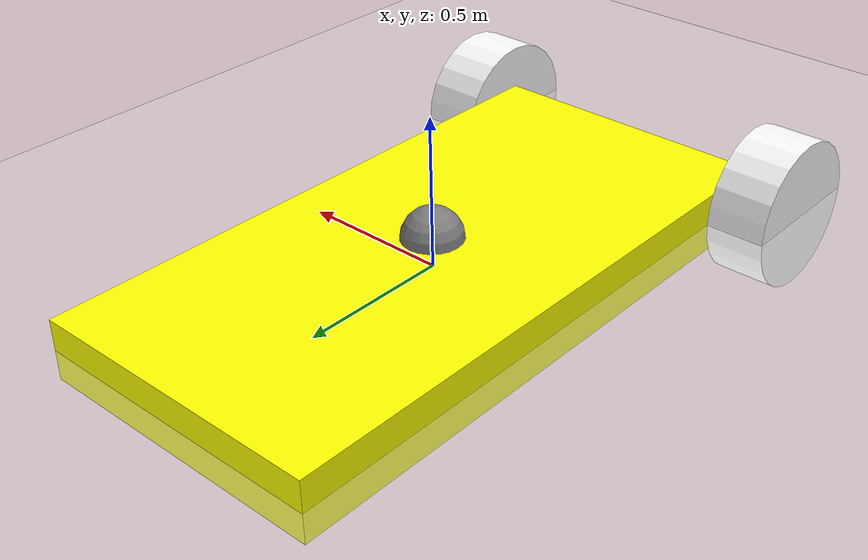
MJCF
<mujoco>
  <option gravity="0 0 -9.81"/>

  <worldbody>
    <camera name="my_cam" pos="0 0 10" euler="0 0 0"/>
    <light diffuse=".5 .5 .5" pos="0 0 10" dir="0 0 -1"/>
    <geom type="plane" size="8 8 0.1" rgba=".9 .9 .9 1"/>

    <body name="chassis" pos="0 0 0">
      <joint type="free" axis="-1 0 0" pos="0 0 -0.5"/>
      <geom type="box" size="0.5 1 0.1" rgba="1 1 0 1"/>
      <site name="marker" pos = "0 0 0.1" size="0.1"/>
      <body name="wheel1" pos="0.6 -1 0" euler="0 90 0">
        <joint name="wheel1" type="hinge" axis="0 0 1" pos="0 0 0"/>
        <geom type="cylinder" size="0.25 0.1" rgba= "1 1 1 1" />
      </body>

      <body name="wheel2" pos="-0.60 -1 0" euler="0 90 0">
        <joint name="wheel2" type="hinge" axis="0 0 1" pos="0 0 0"/>
        <geom type="cylinder" size="0.25 0.1" rgba= "1 1 1 1" />
      </body>
    </body>
  </worldbody>
  <sensor>
    <framepos objtype="site" objname="marker"/>
  </sensor>
  <actuator>
    <velocity name="left-velocity-servo" joint="wheel1" kv="100"/>
    <velocity name="right-velocity-servo" joint="wheel2" kv="100"/>
  </actuator>
</mujoco>
